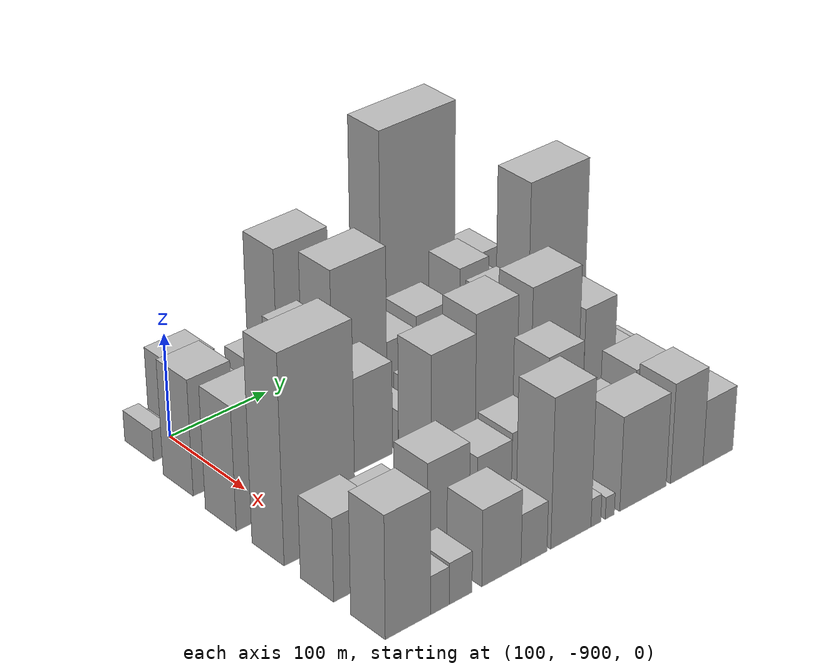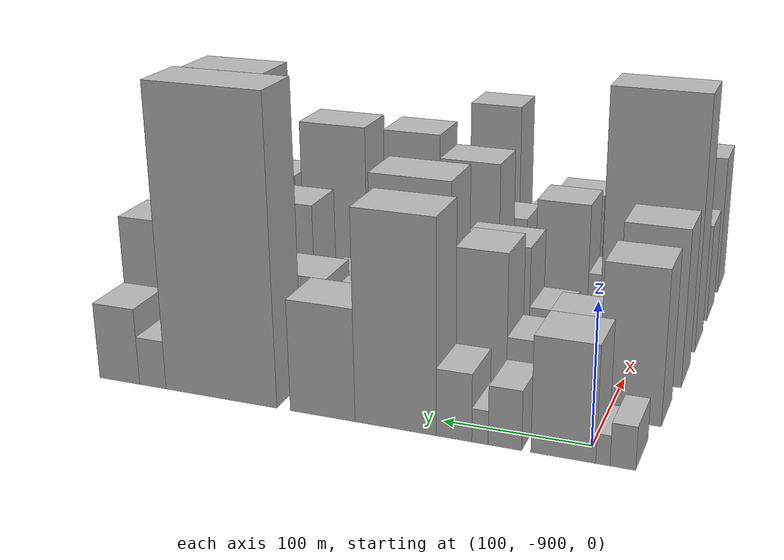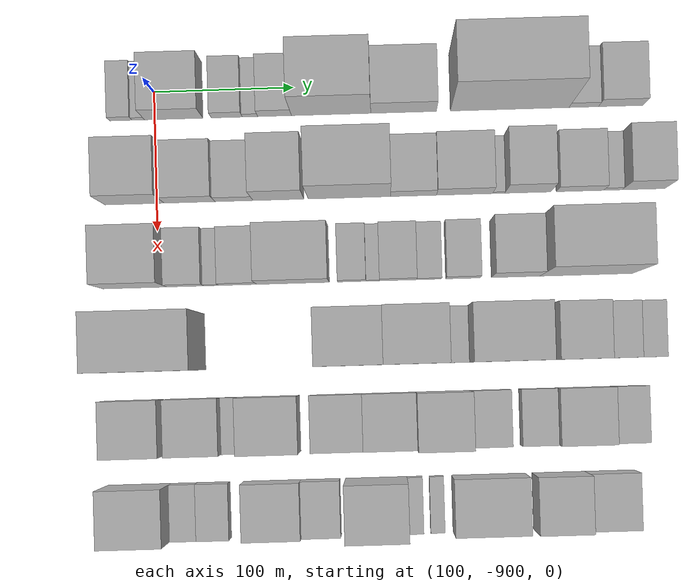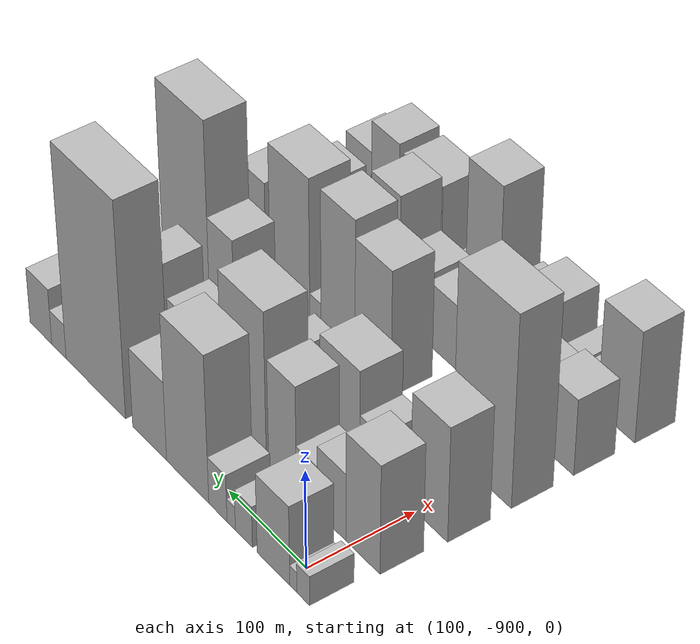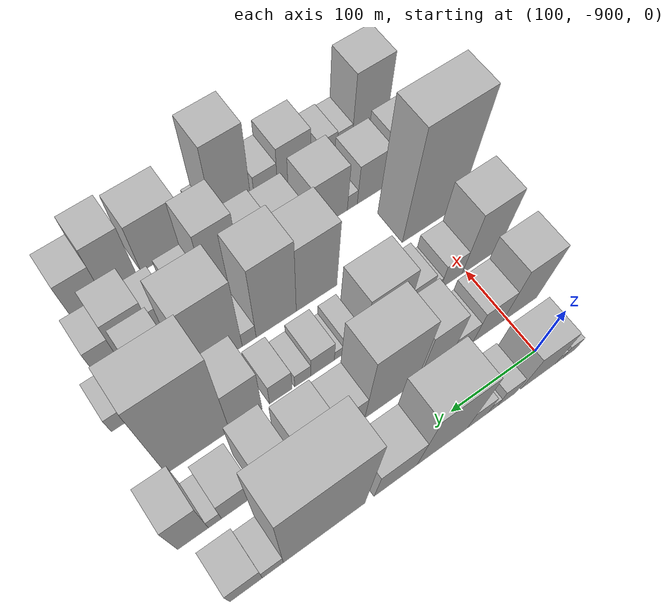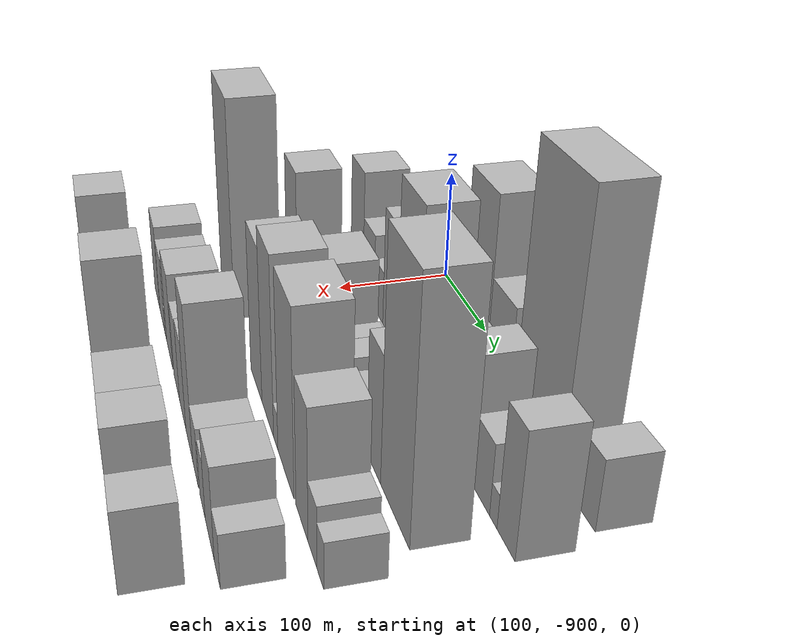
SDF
<sdf version="1.6">
 <world name="default">
  <model name="building_1">
   <static>1</static>
   <pose>100.0000 -923.9491 0 0.000000 0.000000 0.000000</pose>
   <link name="link">
    <pose>0 0 15.00 0 0 0</pose>
    <collision name="collision"><geometry><box><size>40.0000 16.1017 30.0000</size></box></geometry></collision>
    <visual name="visual">
     <cast_shadows>0</cast_shadows>
     <geometry><box><size>40.0000 16.1017 30.0000</size></box></geometry>
     <material>
      <script>
       <uri>model://HANNAS_wall/materials/scripts</uri>
       <uri>model://HANNAS_wall/materials/textures</uri>
       <name>vrc/HANNAS_wall</name>
      </script>
     </material>
    </visual>
   </link>
  </model>
  <model name="building_2">
   <static>1</static>
   <pose>100.0000 -911.4328 0 0.000000 0.000000 0.000000</pose>
   <link name="link">
    <pose>0 0 10.50 0 0 0</pose>
    <collision name="collision"><geometry><box><size>40.0000 8.9309 21.0000</size></box></geometry></collision>
    <visual name="visual">
     <cast_shadows>0</cast_shadows>
     <geometry><box><size>40.0000 8.9309 21.0000</size></box></geometry>
     <material>
      <script>
       <uri>model://HANNAS_wall/materials/scripts</uri>
       <uri>model://HANNAS_wall/materials/textures</uri>
       <name>vrc/HANNAS_wall</name>
      </script>
     </material>
    </visual>
   </link>
  </model>
  <model name="building_3">
   <static>1</static>
   <pose>100.0000 -886.1069 0 0.000000 0.000000 0.000000</pose>
   <link name="link">
    <pose>0 0 40.50 0 0 0</pose>
    <collision name="collision"><geometry><box><size>40.0000 41.7210 81.0000</size></box></geometry></collision>
    <visual name="visual">
     <cast_shadows>0</cast_shadows>
     <geometry><box><size>40.0000 41.7210 81.0000</size></box></geometry>
     <material>
      <script>
       <uri>model://HANNAS_wall/materials/scripts</uri>
       <uri>model://HANNAS_wall/materials/textures</uri>
       <name>vrc/HANNAS_wall</name>
      </script>
     </material>
    </visual>
   </link>
  </model>
  <model name="building_4">
   <static>1</static>
   <pose>100.0000 -848.1512 0 0.000000 0.000000 0.000000</pose>
   <link name="link">
    <pose>0 0 21.00 0 0 0</pose>
    <collision name="collision"><geometry><box><size>40.0000 22.1903 42.0000</size></box></geometry></collision>
    <visual name="visual">
     <cast_shadows>0</cast_shadows>
     <geometry><box><size>40.0000 22.1903 42.0000</size></box></geometry>
     <material>
      <script>
       <uri>model://HANNAS_wall/materials/scripts</uri>
       <uri>model://HANNAS_wall/materials/textures</uri>
       <name>vrc/HANNAS_wall</name>
      </script>
     </material>
    </visual>
   </link>
  </model>
  <model name="building_5">
   <static>1</static>
   <pose>100.0000 -831.5753 0 0.000000 0.000000 0.000000</pose>
   <link name="link">
    <pose>0 0 12.00 0 0 0</pose>
    <collision name="collision"><geometry><box><size>40.0000 10.9615 24.0000</size></box></geometry></collision>
    <visual name="visual">
     <cast_shadows>0</cast_shadows>
     <geometry><box><size>40.0000 10.9615 24.0000</size></box></geometry>
     <material>
      <script>
       <uri>model://HANNAS_wall/materials/scripts</uri>
       <uri>model://HANNAS_wall/materials/textures</uri>
       <name>vrc/HANNAS_wall</name>
      </script>
     </material>
    </visual>
   </link>
  </model>
  <model name="building_6">
   <static>1</static>
   <pose>100.0000 -814.0403 0 0.000000 0.000000 0.000000</pose>
   <link name="link">
    <pose>0 0 24.00 0 0 0</pose>
    <collision name="collision"><geometry><box><size>40.0000 24.1085 48.0000</size></box></geometry></collision>
    <visual name="visual">
     <cast_shadows>0</cast_shadows>
     <geometry><box><size>40.0000 24.1085 48.0000</size></box></geometry>
     <material>
      <script>
       <uri>model://HANNAS_wall/materials/scripts</uri>
       <uri>model://HANNAS_wall/materials/textures</uri>
       <name>vrc/HANNAS_wall</name>
      </script>
     </material>
    </visual>
   </link>
  </model>
  <model name="building_7">
   <static>1</static>
   <pose>100.0000 -773.6093 0 0.000000 0.000000 0.000000</pose>
   <link name="link">
    <pose>0 0 75.00 0 0 0</pose>
    <collision name="collision"><geometry><box><size>40.0000 56.7536 150.0000</size></box></geometry></collision>
    <visual name="visual">
     <cast_shadows>0</cast_shadows>
     <geometry><box><size>40.0000 56.7536 150.0000</size></box></geometry>
     <material>
      <script>
       <uri>model://HANNAS_wall/materials/scripts</uri>
       <uri>model://HANNAS_wall/materials/textures</uri>
       <name>vrc/HANNAS_wall</name>
      </script>
     </material>
    </visual>
   </link>
  </model>
  <model name="building_8">
   <static>1</static>
   <pose>100.0000 -721.7831 0 0.000000 0.000000 0.000000</pose>
   <link name="link">
    <pose>0 0 40.50 0 0 0</pose>
    <collision name="collision"><geometry><box><size>40.0000 46.8986 81.0000</size></box></geometry></collision>
    <visual name="visual">
     <cast_shadows>0</cast_shadows>
     <geometry><box><size>40.0000 46.8986 81.0000</size></box></geometry>
     <material>
      <script>
       <uri>model://HANNAS_wall/materials/scripts</uri>
       <uri>model://HANNAS_wall/materials/textures</uri>
       <name>vrc/HANNAS_wall</name>
      </script>
     </material>
    </visual>
   </link>
  </model>
  <model name="building_9">
   <static>1</static>
   <pose>100.0000 -645.8615 0 0.000000 0.000000 0.000000</pose>
   <link name="link">
    <pose>0 0 109.50 0 0 0</pose>
    <collision name="collision"><geometry><box><size>40.0000 84.9446 219.0000</size></box></geometry></collision>
    <visual name="visual">
     <cast_shadows>0</cast_shadows>
     <geometry><box><size>40.0000 84.9446 219.0000</size></box></geometry>
     <material>
      <script>
       <uri>model://HANNAS_wall/materials/scripts</uri>
       <uri>model://HANNAS_wall/materials/textures</uri>
       <name>vrc/HANNAS_wall</name>
      </script>
     </material>
    </visual>
   </link>
  </model>
  <model name="building_10">
   <static>1</static>
   <pose>100.0000 -592.8607 0 0.000000 0.000000 0.000000</pose>
   <link name="link">
    <pose>0 0 18.00 0 0 0</pose>
    <collision name="collision"><geometry><box><size>40.0000 21.0570 36.0000</size></box></geometry></collision>
    <visual name="visual">
     <cast_shadows>0</cast_shadows>
     <geometry><box><size>40.0000 21.0570 36.0000</size></box></geometry>
     <material>
      <script>
       <uri>model://HANNAS_wall/materials/scripts</uri>
       <uri>model://HANNAS_wall/materials/textures</uri>
       <name>vrc/HANNAS_wall</name>
      </script>
     </material>
    </visual>
   </link>
  </model>
  <model name="building_11">
   <static>1</static>
   <pose>100.0000 -566.2686 0 0.000000 0.000000 0.000000</pose>
   <link name="link">
    <pose>0 0 28.50 0 0 0</pose>
    <collision name="collision"><geometry><box><size>40.0000 32.1273 57.0000</size></box></geometry></collision>
    <visual name="visual">
     <cast_shadows>0</cast_shadows>
     <geometry><box><size>40.0000 32.1273 57.0000</size></box></geometry>
     <material>
      <script>
       <uri>model://HANNAS_wall/materials/scripts</uri>
       <uri>model://HANNAS_wall/materials/textures</uri>
       <name>vrc/HANNAS_wall</name>
      </script>
     </material>
    </visual>
   </link>
  </model>
  <model name="building_57">
   <static>1</static>
   <pose>160.0000 -915.7761 0 0.000000 0.000000 0.000000</pose>
   <link name="link">
    <pose>0 0 55.50 0 0 0</pose>
    <collision name="collision"><geometry><box><size>40.0000 42.4477 111.0000</size></box></geometry></collision>
    <visual name="visual">
     <cast_shadows>0</cast_shadows>
     <geometry><box><size>40.0000 42.4477 111.0000</size></box></geometry>
     <material>
      <script>
       <uri>model://HANNAS_wall/materials/scripts</uri>
       <uri>model://HANNAS_wall/materials/textures</uri>
       <name>vrc/HANNAS_wall</name>
      </script>
     </material>
    </visual>
   </link>
  </model>
  <model name="building_58">
   <static>1</static>
   <pose>160.0000 -876.4491 0 0.000000 0.000000 0.000000</pose>
   <link name="link">
    <pose>0 0 34.50 0 0 0</pose>
    <collision name="collision"><geometry><box><size>40.0000 36.2063 69.0000</size></box></geometry></collision>
    <visual name="visual">
     <cast_shadows>0</cast_shadows>
     <geometry><box><size>40.0000 36.2063 69.0000</size></box></geometry>
     <material>
      <script>
       <uri>model://HANNAS_wall/materials/scripts</uri>
       <uri>model://HANNAS_wall/materials/textures</uri>
       <name>vrc/HANNAS_wall</name>
      </script>
     </material>
    </visual>
   </link>
  </model>
  <model name="building_59">
   <static>1</static>
   <pose>160.0000 -844.7111 0 0.000000 0.000000 0.000000</pose>
   <link name="link">
    <pose>0 0 24.00 0 0 0</pose>
    <collision name="collision"><geometry><box><size>40.0000 27.2696 48.0000</size></box></geometry></collision>
    <visual name="visual">
     <cast_shadows>0</cast_shadows>
     <geometry><box><size>40.0000 27.2696 48.0000</size></box></geometry>
     <material>
      <script>
       <uri>model://HANNAS_wall/materials/scripts</uri>
       <uri>model://HANNAS_wall/materials/textures</uri>
       <name>vrc/HANNAS_wall</name>
      </script>
     </material>
    </visual>
   </link>
  </model>
  <model name="building_60">
   <static>1</static>
   <pose>160.0000 -812.8589 0 0.000000 0.000000 0.000000</pose>
   <link name="link">
    <pose>0 0 54.00 0 0 0</pose>
    <collision name="collision"><geometry><box><size>40.0000 36.4347 108.0000</size></box></geometry></collision>
    <visual name="visual">
     <cast_shadows>0</cast_shadows>
     <geometry><box><size>40.0000 36.4347 108.0000</size></box></geometry>
     <material>
      <script>
       <uri>model://HANNAS_wall/materials/scripts</uri>
       <uri>model://HANNAS_wall/materials/textures</uri>
       <name>vrc/HANNAS_wall</name>
      </script>
     </material>
    </visual>
   </link>
  </model>
  <model name="building_61">
   <static>1</static>
   <pose>160.0000 -762.2633 0 0.000000 0.000000 0.000000</pose>
   <link name="link">
    <pose>0 0 76.50 0 0 0</pose>
    <collision name="collision"><geometry><box><size>40.0000 58.7567 153.0000</size></box></geometry></collision>
    <visual name="visual">
     <cast_shadows>0</cast_shadows>
     <geometry><box><size>40.0000 58.7567 153.0000</size></box></geometry>
     <material>
      <script>
       <uri>model://HANNAS_wall/materials/scripts</uri>
       <uri>model://HANNAS_wall/materials/textures</uri>
       <name>vrc/HANNAS_wall</name>
      </script>
     </material>
    </visual>
   </link>
  </model>
  <model name="building_62">
   <static>1</static>
   <pose>160.0000 -716.4617 0 0.000000 0.000000 0.000000</pose>
   <link name="link">
    <pose>0 0 30.00 0 0 0</pose>
    <collision name="collision"><geometry><box><size>40.0000 32.8464 60.0000</size></box></geometry></collision>
    <visual name="visual">
     <cast_shadows>0</cast_shadows>
     <geometry><box><size>40.0000 32.8464 60.0000</size></box></geometry>
     <material>
      <script>
       <uri>model://HANNAS_wall/materials/scripts</uri>
       <uri>model://HANNAS_wall/materials/textures</uri>
       <name>vrc/HANNAS_wall</name>
      </script>
     </material>
    </visual>
   </link>
  </model>
  <model name="building_63">
   <static>1</static>
   <pose>160.0000 -679.9640 0 0.000000 0.000000 0.000000</pose>
   <link name="link">
    <pose>0 0 36.00 0 0 0</pose>
    <collision name="collision"><geometry><box><size>40.0000 40.1491 72.0000</size></box></geometry></collision>
    <visual name="visual">
     <cast_shadows>0</cast_shadows>
     <geometry><box><size>40.0000 40.1491 72.0000</size></box></geometry>
     <material>
      <script>
       <uri>model://HANNAS_wall/materials/scripts</uri>
       <uri>model://HANNAS_wall/materials/textures</uri>
       <name>vrc/HANNAS_wall</name>
      </script>
     </material>
    </visual>
   </link>
  </model>
  <model name="building_64">
   <static>1</static>
   <pose>160.0000 -655.5191 0 0.000000 0.000000 0.000000</pose>
   <link name="link">
    <pose>0 0 9.00 0 0 0</pose>
    <collision name="collision"><geometry><box><size>40.0000 8.7407 18.0000</size></box></geometry></collision>
    <visual name="visual">
     <cast_shadows>0</cast_shadows>
     <geometry><box><size>40.0000 8.7407 18.0000</size></box></geometry>
     <material>
      <script>
       <uri>model://HANNAS_wall/materials/scripts</uri>
       <uri>model://HANNAS_wall/materials/textures</uri>
       <name>vrc/HANNAS_wall</name>
      </script>
     </material>
    </visual>
   </link>
  </model>
  <model name="building_65">
   <static>1</static>
   <pose>160.0000 -634.7600 0 0.000000 0.000000 0.000000</pose>
   <link name="link">
    <pose>0 0 49.50 0 0 0</pose>
    <collision name="collision"><geometry><box><size>40.0000 32.7775 99.0000</size></box></geometry></collision>
    <visual name="visual">
     <cast_shadows>0</cast_shadows>
     <geometry><box><size>40.0000 32.7775 99.0000</size></box></geometry>
     <material>
      <script>
       <uri>model://HANNAS_wall/materials/scripts</uri>
       <uri>model://HANNAS_wall/materials/textures</uri>
       <name>vrc/HANNAS_wall</name>
      </script>
     </material>
    </visual>
   </link>
  </model>
  <model name="building_66">
   <static>1</static>
   <pose>160.0000 -597.4583 0 0.000000 0.000000 0.000000</pose>
   <link name="link">
    <pose>0 0 28.50 0 0 0</pose>
    <collision name="collision"><geometry><box><size>40.0000 33.8259 57.0000</size></box></geometry></collision>
    <visual name="visual">
     <cast_shadows>0</cast_shadows>
     <geometry><box><size>40.0000 33.8259 57.0000</size></box></geometry>
     <material>
      <script>
       <uri>model://HANNAS_wall/materials/scripts</uri>
       <uri>model://HANNAS_wall/materials/textures</uri>
       <name>vrc/HANNAS_wall</name>
      </script>
     </material>
    </visual>
   </link>
  </model>
  <model name="building_67">
   <static>1</static>
   <pose>160.0000 -573.9164 0 0.000000 0.000000 0.000000</pose>
   <link name="link">
    <pose>0 0 13.50 0 0 0</pose>
    <collision name="collision"><geometry><box><size>40.0000 13.2579 27.0000</size></box></geometry></collision>
    <visual name="visual">
     <cast_shadows>0</cast_shadows>
     <geometry><box><size>40.0000 13.2579 27.0000</size></box></geometry>
     <material>
      <script>
       <uri>model://HANNAS_wall/materials/scripts</uri>
       <uri>model://HANNAS_wall/materials/textures</uri>
       <name>vrc/HANNAS_wall</name>
      </script>
     </material>
    </visual>
   </link>
  </model>
  <model name="building_68">
   <static>1</static>
   <pose>160.0000 -551.9652 0 0.000000 0.000000 0.000000</pose>
   <link name="link">
    <pose>0 0 49.50 0 0 0</pose>
    <collision name="collision"><geometry><box><size>40.0000 30.6444 99.0000</size></box></geometry></collision>
    <visual name="visual">
     <cast_shadows>0</cast_shadows>
     <geometry><box><size>40.0000 30.6444 99.0000</size></box></geometry>
     <material>
      <script>
       <uri>model://HANNAS_wall/materials/scripts</uri>
       <uri>model://HANNAS_wall/materials/textures</uri>
       <name>vrc/HANNAS_wall</name>
      </script>
     </material>
    </visual>
   </link>
  </model>
  <model name="building_107">
   <static>1</static>
   <pose>220.0000 -917.1409 0 0.000000 0.000000 0.000000</pose>
   <link name="link">
    <pose>0 0 58.50 0 0 0</pose>
    <collision name="collision"><geometry><box><size>40.0000 45.7182 117.0000</size></box></geometry></collision>
    <visual name="visual">
     <cast_shadows>0</cast_shadows>
     <geometry><box><size>40.0000 45.7182 117.0000</size></box></geometry>
     <material>
      <script>
       <uri>model://HANNAS_wall/materials/scripts</uri>
       <uri>model://HANNAS_wall/materials/textures</uri>
       <name>vrc/HANNAS_wall</name>
      </script>
     </material>
    </visual>
   </link>
  </model>
  <model name="building_108">
   <static>1</static>
   <pose>220.0000 -881.0638 0 0.000000 0.000000 0.000000</pose>
   <link name="link">
    <pose>0 0 24.00 0 0 0</pose>
    <collision name="collision"><geometry><box><size>40.0000 26.4360 48.0000</size></box></geometry></collision>
    <visual name="visual">
     <cast_shadows>0</cast_shadows>
     <geometry><box><size>40.0000 26.4360 48.0000</size></box></geometry>
     <material>
      <script>
       <uri>model://HANNAS_wall/materials/scripts</uri>
       <uri>model://HANNAS_wall/materials/textures</uri>
       <name>vrc/HANNAS_wall</name>
      </script>
     </material>
    </visual>
   </link>
  </model>
  <model name="building_109">
   <static>1</static>
   <pose>220.0000 -862.3689 0 0.000000 0.000000 0.000000</pose>
   <link name="link">
    <pose>0 0 12.00 0 0 0</pose>
    <collision name="collision"><geometry><box><size>40.0000 10.9539 24.0000</size></box></geometry></collision>
    <visual name="visual">
     <cast_shadows>0</cast_shadows>
     <geometry><box><size>40.0000 10.9539 24.0000</size></box></geometry>
     <material>
      <script>
       <uri>model://HANNAS_wall/materials/scripts</uri>
       <uri>model://HANNAS_wall/materials/textures</uri>
       <name>vrc/HANNAS_wall</name>
      </script>
     </material>
    </visual>
   </link>
  </model>
  <model name="building_110">
   <static>1</static>
   <pose>220.0000 -843.4143 0 0.000000 0.000000 0.000000</pose>
   <link name="link">
    <pose>0 0 22.50 0 0 0</pose>
    <collision name="collision"><geometry><box><size>40.0000 26.9551 45.0000</size></box></geometry></collision>
    <visual name="visual">
     <cast_shadows>0</cast_shadows>
     <geometry><box><size>40.0000 26.9551 45.0000</size></box></geometry>
     <material>
      <script>
       <uri>model://HANNAS_wall/materials/scripts</uri>
       <uri>model://HANNAS_wall/materials/textures</uri>
       <name>vrc/HANNAS_wall</name>
      </script>
     </material>
    </visual>
   </link>
  </model>
  <model name="building_111">
   <static>1</static>
   <pose>220.0000 -804.0800 0 0.000000 0.000000 0.000000</pose>
   <link name="link">
    <pose>0 0 45.00 0 0 0</pose>
    <collision name="collision"><geometry><box><size>40.0000 51.7137 90.0000</size></box></geometry></collision>
    <visual name="visual">
     <cast_shadows>0</cast_shadows>
     <geometry><box><size>40.0000 51.7137 90.0000</size></box></geometry>
     <material>
      <script>
       <uri>model://HANNAS_wall/materials/scripts</uri>
       <uri>model://HANNAS_wall/materials/textures</uri>
       <name>vrc/HANNAS_wall</name>
      </script>
     </material>
    </visual>
   </link>
  </model>
  <model name="building_112">
   <static>1</static>
   <pose>220.0000 -762.1597 0 0.000000 0.000000 0.000000</pose>
   <link name="link">
    <pose>0 0 19.50 0 0 0</pose>
    <collision name="collision"><geometry><box><size>40.0000 20.1268 39.0000</size></box></geometry></collision>
    <visual name="visual">
     <cast_shadows>0</cast_shadows>
     <geometry><box><size>40.0000 20.1268 39.0000</size></box></geometry>
     <material>
      <script>
       <uri>model://HANNAS_wall/materials/scripts</uri>
       <uri>model://HANNAS_wall/materials/textures</uri>
       <name>vrc/HANNAS_wall</name>
      </script>
     </material>
    </visual>
   </link>
  </model>
  <model name="building_113">
   <static>1</static>
   <pose>220.0000 -747.3352 0 0.000000 0.000000 0.000000</pose>
   <link name="link">
    <pose>0 0 10.50 0 0 0</pose>
    <collision name="collision"><geometry><box><size>40.0000 9.5224 21.0000</size></box></geometry></collision>
    <visual name="visual">
     <cast_shadows>0</cast_shadows>
     <geometry><box><size>40.0000 9.5224 21.0000</size></box></geometry>
     <material>
      <script>
       <uri>model://HANNAS_wall/materials/scripts</uri>
       <uri>model://HANNAS_wall/materials/textures</uri>
       <name>vrc/HANNAS_wall</name>
      </script>
     </material>
    </visual>
   </link>
  </model>
  <model name="building_114">
   <static>1</static>
   <pose>220.0000 -729.2633 0 0.000000 0.000000 0.000000</pose>
   <link name="link">
    <pose>0 0 22.50 0 0 0</pose>
    <collision name="collision"><geometry><box><size>40.0000 26.6213 45.0000</size></box></geometry></collision>
    <visual name="visual">
     <cast_shadows>0</cast_shadows>
     <geometry><box><size>40.0000 26.6213 45.0000</size></box></geometry>
     <material>
      <script>
       <uri>model://HANNAS_wall/materials/scripts</uri>
       <uri>model://HANNAS_wall/materials/textures</uri>
       <name>vrc/HANNAS_wall</name>
      </script>
     </material>
    </visual>
   </link>
  </model>
  <model name="building_115">
   <static>1</static>
   <pose>220.0000 -707.0946 0 0.000000 0.000000 0.000000</pose>
   <link name="link">
    <pose>0 0 15.00 0 0 0</pose>
    <collision name="collision"><geometry><box><size>40.0000 17.7162 30.0000</size></box></geometry></collision>
    <visual name="visual">
     <cast_shadows>0</cast_shadows>
     <geometry><box><size>40.0000 17.7162 30.0000</size></box></geometry>
     <material>
      <script>
       <uri>model://HANNAS_wall/materials/scripts</uri>
       <uri>model://HANNAS_wall/materials/textures</uri>
       <name>vrc/HANNAS_wall</name>
      </script>
     </material>
    </visual>
   </link>
  </model>
  <model name="building_116">
   <static>1</static>
   <pose>220.0000 -682.9379 0 0.000000 0.000000 0.000000</pose>
   <link name="link">
    <pose>0 0 24.00 0 0 0</pose>
    <collision name="collision"><geometry><box><size>40.0000 24.5972 48.0000</size></box></geometry></collision>
    <visual name="visual">
     <cast_shadows>0</cast_shadows>
     <geometry><box><size>40.0000 24.5972 48.0000</size></box></geometry>
     <material>
      <script>
       <uri>model://HANNAS_wall/materials/scripts</uri>
       <uri>model://HANNAS_wall/materials/textures</uri>
       <name>vrc/HANNAS_wall</name>
      </script>
     </material>
    </visual>
   </link>
  </model>
  <model name="building_117">
   <static>1</static>
   <pose>220.0000 -645.2864 0 0.000000 0.000000 0.000000</pose>
   <link name="link">
    <pose>0 0 51.00 0 0 0</pose>
    <collision name="collision"><geometry><box><size>40.0000 34.7057 102.0000</size></box></geometry></collision>
    <visual name="visual">
     <cast_shadows>0</cast_shadows>
     <geometry><box><size>40.0000 34.7057 102.0000</size></box></geometry>
     <material>
      <script>
       <uri>model://HANNAS_wall/materials/scripts</uri>
       <uri>model://HANNAS_wall/materials/textures</uri>
       <name>vrc/HANNAS_wall</name>
      </script>
     </material>
    </visual>
   </link>
  </model>
  <model name="building_118">
   <static>1</static>
   <pose>220.0000 -594.8262 0 0.000000 0.000000 0.000000</pose>
   <link name="link">
    <pose>0 0 99.00 0 0 0</pose>
    <collision name="collision"><geometry><box><size>40.0000 66.2147 198.0000</size></box></geometry></collision>
    <visual name="visual">
     <cast_shadows>0</cast_shadows>
     <geometry><box><size>40.0000 66.2147 198.0000</size></box></geometry>
     <material>
      <script>
       <uri>model://HANNAS_wall/materials/scripts</uri>
       <uri>model://HANNAS_wall/materials/textures</uri>
       <name>vrc/HANNAS_wall</name>
      </script>
     </material>
    </visual>
   </link>
  </model>
  <model name="building_162">
   <static>1</static>
   <pose>280.0000 -904.1017 0 0.000000 0.000000 0.000000</pose>
   <link name="link">
    <pose>0 0 97.50 0 0 0</pose>
    <collision name="collision"><geometry><box><size>40.0000 71.7966 195.0000</size></box></geometry></collision>
    <visual name="visual">
     <cast_shadows>0</cast_shadows>
     <geometry><box><size>40.0000 71.7966 195.0000</size></box></geometry>
     <material>
      <script>
       <uri>model://HANNAS_wall/materials/scripts</uri>
       <uri>model://HANNAS_wall/materials/textures</uri>
       <name>vrc/HANNAS_wall</name>
      </script>
     </material>
    </visual>
   </link>
  </model>
  <model name="building_163">
   <static>1</static>
   <pose>280.0000 -765.3222 0 0.000000 0.000000 0.000000</pose>
   <link name="link">
    <pose>0 0 64.50 0 0 0</pose>
    <collision name="collision"><geometry><box><size>40.0000 47.2542 129.0000</size></box></geometry></collision>
    <visual name="visual">
     <cast_shadows>0</cast_shadows>
     <geometry><box><size>40.0000 47.2542 129.0000</size></box></geometry>
     <material>
      <script>
       <uri>model://HANNAS_wall/materials/scripts</uri>
       <uri>model://HANNAS_wall/materials/textures</uri>
       <name>vrc/HANNAS_wall</name>
      </script>
     </material>
    </visual>
   </link>
  </model>
  <model name="building_164">
   <static>1</static>
   <pose>280.0000 -718.9723 0 0.000000 0.000000 0.000000</pose>
   <link name="link">
    <pose>0 0 73.50 0 0 0</pose>
    <collision name="collision"><geometry><box><size>40.0000 45.4455 147.0000</size></box></geometry></collision>
    <visual name="visual">
     <cast_shadows>0</cast_shadows>
     <geometry><box><size>40.0000 45.4455 147.0000</size></box></geometry>
     <material>
      <script>
       <uri>model://HANNAS_wall/materials/scripts</uri>
       <uri>model://HANNAS_wall/materials/textures</uri>
       <name>vrc/HANNAS_wall</name>
      </script>
     </material>
    </visual>
   </link>
  </model>
  <model name="building_165">
   <static>1</static>
   <pose>280.0000 -688.5079 0 0.000000 0.000000 0.000000</pose>
   <link name="link">
    <pose>0 0 15.00 0 0 0</pose>
    <collision name="collision"><geometry><box><size>40.0000 15.4833 30.0000</size></box></geometry></collision>
    <visual name="visual">
     <cast_shadows>0</cast_shadows>
     <geometry><box><size>40.0000 15.4833 30.0000</size></box></geometry>
     <material>
      <script>
       <uri>model://HANNAS_wall/materials/scripts</uri>
       <uri>model://HANNAS_wall/materials/textures</uri>
       <name>vrc/HANNAS_wall</name>
      </script>
     </material>
    </visual>
   </link>
  </model>
  <model name="building_166">
   <static>1</static>
   <pose>280.0000 -653.5273 0 0.000000 0.000000 0.000000</pose>
   <link name="link">
    <pose>0 0 73.50 0 0 0</pose>
    <collision name="collision"><geometry><box><size>40.0000 54.4779 147.0000</size></box></geometry></collision>
    <visual name="visual">
     <cast_shadows>0</cast_shadows>
     <geometry><box><size>40.0000 54.4779 147.0000</size></box></geometry>
     <material>
      <script>
       <uri>model://HANNAS_wall/materials/scripts</uri>
       <uri>model://HANNAS_wall/materials/textures</uri>
       <name>vrc/HANNAS_wall</name>
      </script>
     </material>
    </visual>
   </link>
  </model>
  <model name="building_167">
   <static>1</static>
   <pose>280.0000 -602.2470 0 0.000000 0.000000 0.000000</pose>
   <link name="link">
    <pose>0 0 51.00 0 0 0</pose>
    <collision name="collision"><geometry><box><size>40.0000 36.0828 102.0000</size></box></geometry></collision>
    <visual name="visual">
     <cast_shadows>0</cast_shadows>
     <geometry><box><size>40.0000 36.0828 102.0000</size></box></geometry>
     <material>
      <script>
       <uri>model://HANNAS_wall/materials/scripts</uri>
       <uri>model://HANNAS_wall/materials/textures</uri>
       <name>vrc/HANNAS_wall</name>
      </script>
     </material>
    </visual>
   </link>
  </model>
  <model name="building_168">
   <static>1</static>
   <pose>280.0000 -571.8471 0 0.000000 0.000000 0.000000</pose>
   <link name="link">
    <pose>0 0 24.00 0 0 0</pose>
    <collision name="collision"><geometry><box><size>40.0000 24.7170 48.0000</size></box></geometry></collision>
    <visual name="visual">
     <cast_shadows>0</cast_shadows>
     <geometry><box><size>40.0000 24.7170 48.0000</size></box></geometry>
     <material>
      <script>
       <uri>model://HANNAS_wall/materials/scripts</uri>
       <uri>model://HANNAS_wall/materials/textures</uri>
       <name>vrc/HANNAS_wall</name>
      </script>
     </material>
    </visual>
   </link>
  </model>
  <model name="building_169">
   <static>1</static>
   <pose>280.0000 -550.3412 0 0.000000 0.000000 0.000000</pose>
   <link name="link">
    <pose>0 0 18.00 0 0 0</pose>
    <collision name="collision"><geometry><box><size>40.0000 18.2948 36.0000</size></box></geometry></collision>
    <visual name="visual">
     <cast_shadows>0</cast_shadows>
     <geometry><box><size>40.0000 18.2948 36.0000</size></box></geometry>
     <material>
      <script>
       <uri>model://HANNAS_wall/materials/scripts</uri>
       <uri>model://HANNAS_wall/materials/textures</uri>
       <name>vrc/HANNAS_wall</name>
      </script>
     </material>
    </visual>
   </link>
  </model>
  <model name="building_217">
   <static>1</static>
   <pose>340.0000 -919.4369 0 0.000000 0.000000 0.000000</pose>
   <link name="link">
    <pose>0 0 39.00 0 0 0</pose>
    <collision name="collision"><geometry><box><size>40.0000 41.1262 78.0000</size></box></geometry></collision>
    <visual name="visual">
     <cast_shadows>0</cast_shadows>
     <geometry><box><size>40.0000 41.1262 78.0000</size></box></geometry>
     <material>
      <script>
       <uri>model://HANNAS_wall/materials/scripts</uri>
       <uri>model://HANNAS_wall/materials/textures</uri>
       <name>vrc/HANNAS_wall</name>
      </script>
     </material>
    </visual>
   </link>
  </model>
  <model name="building_218">
   <static>1</static>
   <pose>340.0000 -876.7434 0 0.000000 0.000000 0.000000</pose>
   <link name="link">
    <pose>0 0 34.50 0 0 0</pose>
    <collision name="collision"><geometry><box><size>40.0000 38.2609 69.0000</size></box></geometry></collision>
    <visual name="visual">
     <cast_shadows>0</cast_shadows>
     <geometry><box><size>40.0000 38.2609 69.0000</size></box></geometry>
     <material>
      <script>
       <uri>model://HANNAS_wall/materials/scripts</uri>
       <uri>model://HANNAS_wall/materials/textures</uri>
       <name>vrc/HANNAS_wall</name>
      </script>
     </material>
    </visual>
   </link>
  </model>
  <model name="building_219">
   <static>1</static>
   <pose>340.0000 -851.4649 0 0.000000 0.000000 0.000000</pose>
   <link name="link">
    <pose>0 0 13.50 0 0 0</pose>
    <collision name="collision"><geometry><box><size>40.0000 12.2961 27.0000</size></box></geometry></collision>
    <visual name="visual">
     <cast_shadows>0</cast_shadows>
     <geometry><box><size>40.0000 12.2961 27.0000</size></box></geometry>
     <material>
      <script>
       <uri>model://HANNAS_wall/materials/scripts</uri>
       <uri>model://HANNAS_wall/materials/textures</uri>
       <name>vrc/HANNAS_wall</name>
      </script>
     </material>
    </visual>
   </link>
  </model>
  <model name="building_220">
   <static>1</static>
   <pose>340.0000 -823.6471 0 0.000000 0.000000 0.000000</pose>
   <link name="link">
    <pose>0 0 42.00 0 0 0</pose>
    <collision name="collision"><geometry><box><size>40.0000 43.3394 84.0000</size></box></geometry></collision>
    <visual name="visual">
     <cast_shadows>0</cast_shadows>
     <geometry><box><size>40.0000 43.3394 84.0000</size></box></geometry>
     <material>
      <script>
       <uri>model://HANNAS_wall/materials/scripts</uri>
       <uri>model://HANNAS_wall/materials/textures</uri>
       <name>vrc/HANNAS_wall</name>
      </script>
     </material>
    </visual>
   </link>
  </model>
  <model name="building_221">
   <static>1</static>
   <pose>340.0000 -775.6077 0 0.000000 0.000000 0.000000</pose>
   <link name="link">
    <pose>0 0 33.00 0 0 0</pose>
    <collision name="collision"><geometry><box><size>40.0000 36.7395 66.0000</size></box></geometry></collision>
    <visual name="visual">
     <cast_shadows>0</cast_shadows>
     <geometry><box><size>40.0000 36.7395 66.0000</size></box></geometry>
     <material>
      <script>
       <uri>model://HANNAS_wall/materials/scripts</uri>
       <uri>model://HANNAS_wall/materials/textures</uri>
       <name>vrc/HANNAS_wall</name>
      </script>
     </material>
    </visual>
   </link>
  </model>
  <model name="building_222">
   <static>1</static>
   <pose>340.0000 -738.3182 0 0.000000 0.000000 0.000000</pose>
   <link name="link">
    <pose>0 0 36.00 0 0 0</pose>
    <collision name="collision"><geometry><box><size>40.0000 37.8397 72.0000</size></box></geometry></collision>
    <visual name="visual">
     <cast_shadows>0</cast_shadows>
     <geometry><box><size>40.0000 37.8397 72.0000</size></box></geometry>
     <material>
      <script>
       <uri>model://HANNAS_wall/materials/scripts</uri>
       <uri>model://HANNAS_wall/materials/textures</uri>
       <name>vrc/HANNAS_wall</name>
      </script>
     </material>
    </visual>
   </link>
  </model>
  <model name="building_223">
   <static>1</static>
   <pose>340.0000 -700.2381 0 0.000000 0.000000 0.000000</pose>
   <link name="link">
    <pose>0 0 63.00 0 0 0</pose>
    <collision name="collision"><geometry><box><size>40.0000 38.3205 126.0000</size></box></geometry></collision>
    <visual name="visual">
     <cast_shadows>0</cast_shadows>
     <geometry><box><size>40.0000 38.3205 126.0000</size></box></geometry>
     <material>
      <script>
       <uri>model://HANNAS_wall/materials/scripts</uri>
       <uri>model://HANNAS_wall/materials/textures</uri>
       <name>vrc/HANNAS_wall</name>
      </script>
     </material>
    </visual>
   </link>
  </model>
  <model name="building_224">
   <static>1</static>
   <pose>340.0000 -666.7910 0 0.000000 0.000000 0.000000</pose>
   <link name="link">
    <pose>0 0 24.00 0 0 0</pose>
    <collision name="collision"><geometry><box><size>40.0000 28.5738 48.0000</size></box></geometry></collision>
    <visual name="visual">
     <cast_shadows>0</cast_shadows>
     <geometry><box><size>40.0000 28.5738 48.0000</size></box></geometry>
     <material>
      <script>
       <uri>model://HANNAS_wall/materials/scripts</uri>
       <uri>model://HANNAS_wall/materials/textures</uri>
       <name>vrc/HANNAS_wall</name>
      </script>
     </material>
    </visual>
   </link>
  </model>
  <model name="building_225">
   <static>1</static>
   <pose>340.0000 -632.6880 0 0.000000 0.000000 0.000000</pose>
   <link name="link">
    <pose>0 0 22.50 0 0 0</pose>
    <collision name="collision"><geometry><box><size>40.0000 25.6322 45.0000</size></box></geometry></collision>
    <visual name="visual">
     <cast_shadows>0</cast_shadows>
     <geometry><box><size>40.0000 25.6322 45.0000</size></box></geometry>
     <material>
      <script>
       <uri>model://HANNAS_wall/materials/scripts</uri>
       <uri>model://HANNAS_wall/materials/textures</uri>
       <name>vrc/HANNAS_wall</name>
      </script>
     </material>
    </visual>
   </link>
  </model>
  <model name="building_226">
   <static>1</static>
   <pose>340.0000 -600.1332 0 0.000000 0.000000 0.000000</pose>
   <link name="link">
    <pose>0 0 36.00 0 0 0</pose>
    <collision name="collision"><geometry><box><size>40.0000 39.4774 72.0000</size></box></geometry></collision>
    <visual name="visual">
     <cast_shadows>0</cast_shadows>
     <geometry><box><size>40.0000 39.4774 72.0000</size></box></geometry>
     <material>
      <script>
       <uri>model://HANNAS_wall/materials/scripts</uri>
       <uri>model://HANNAS_wall/materials/textures</uri>
       <name>vrc/HANNAS_wall</name>
      </script>
     </material>
    </visual>
   </link>
  </model>
  <model name="building_227">
   <static>1</static>
   <pose>340.0000 -567.9338 0 0.000000 0.000000 0.000000</pose>
   <link name="link">
    <pose>0 0 21.00 0 0 0</pose>
    <collision name="collision"><geometry><box><size>40.0000 24.9214 42.0000</size></box></geometry></collision>
    <visual name="visual">
     <cast_shadows>0</cast_shadows>
     <geometry><box><size>40.0000 24.9214 42.0000</size></box></geometry>
     <material>
      <script>
       <uri>model://HANNAS_wall/materials/scripts</uri>
       <uri>model://HANNAS_wall/materials/textures</uri>
       <name>vrc/HANNAS_wall</name>
      </script>
     </material>
    </visual>
   </link>
  </model>
  <model name="building_271">
   <static>1</static>
   <pose>400.0000 -917.4859 0 0.000000 0.000000 0.000000</pose>
   <link name="link">
    <pose>0 0 57.00 0 0 0</pose>
    <collision name="collision"><geometry><box><size>40.0000 45.0281 114.0000</size></box></geometry></collision>
    <visual name="visual">
     <cast_shadows>0</cast_shadows>
     <geometry><box><size>40.0000 45.0281 114.0000</size></box></geometry>
     <material>
      <script>
       <uri>model://HANNAS_wall/materials/scripts</uri>
       <uri>model://HANNAS_wall/materials/textures</uri>
       <name>vrc/HANNAS_wall</name>
      </script>
     </material>
    </visual>
   </link>
  </model>
  <model name="building_272">
   <static>1</static>
   <pose>400.0000 -885.6295 0 0.000000 0.000000 0.000000</pose>
   <link name="link">
    <pose>0 0 18.00 0 0 0</pose>
    <collision name="collision"><geometry><box><size>40.0000 18.6848 36.0000</size></box></geometry></collision>
    <visual name="visual">
     <cast_shadows>0</cast_shadows>
     <geometry><box><size>40.0000 18.6848 36.0000</size></box></geometry>
     <material>
      <script>
       <uri>model://HANNAS_wall/materials/scripts</uri>
       <uri>model://HANNAS_wall/materials/textures</uri>
       <name>vrc/HANNAS_wall</name>
      </script>
     </material>
    </visual>
   </link>
  </model>
  <model name="building_273">
   <static>1</static>
   <pose>400.0000 -864.7267 0 0.000000 0.000000 0.000000</pose>
   <link name="link">
    <pose>0 0 19.50 0 0 0</pose>
    <collision name="collision"><geometry><box><size>40.0000 23.1207 39.0000</size></box></geometry></collision>
    <visual name="visual">
     <cast_shadows>0</cast_shadows>
     <geometry><box><size>40.0000 23.1207 39.0000</size></box></geometry>
     <material>
      <script>
       <uri>model://HANNAS_wall/materials/scripts</uri>
       <uri>model://HANNAS_wall/materials/textures</uri>
       <name>vrc/HANNAS_wall</name>
      </script>
     </material>
    </visual>
   </link>
  </model>
  <model name="building_274">
   <static>1</static>
   <pose>400.0000 -822.7405 0 0.000000 0.000000 0.000000</pose>
   <link name="link">
    <pose>0 0 36.00 0 0 0</pose>
    <collision name="collision"><geometry><box><size>40.0000 40.8517 72.0000</size></box></geometry></collision>
    <visual name="visual">
     <cast_shadows>0</cast_shadows>
     <geometry><box><size>40.0000 40.8517 72.0000</size></box></geometry>
     <material>
      <script>
       <uri>model://HANNAS_wall/materials/scripts</uri>
       <uri>model://HANNAS_wall/materials/textures</uri>
       <name>vrc/HANNAS_wall</name>
      </script>
     </material>
    </visual>
   </link>
  </model>
  <model name="building_275">
   <static>1</static>
   <pose>400.0000 -788.5054 0 0.000000 0.000000 0.000000</pose>
   <link name="link">
    <pose>0 0 24.00 0 0 0</pose>
    <collision name="collision"><geometry><box><size>40.0000 27.6184 48.0000</size></box></geometry></collision>
    <visual name="visual">
     <cast_shadows>0</cast_shadows>
     <geometry><box><size>40.0000 27.6184 48.0000</size></box></geometry>
     <material>
      <script>
       <uri>model://HANNAS_wall/materials/scripts</uri>
       <uri>model://HANNAS_wall/materials/textures</uri>
       <name>vrc/HANNAS_wall</name>
      </script>
     </material>
    </visual>
   </link>
  </model>
  <model name="building_276">
   <static>1</static>
   <pose>400.0000 -748.9218 0 0.000000 0.000000 0.000000</pose>
   <link name="link">
    <pose>0 0 70.50 0 0 0</pose>
    <collision name="collision"><geometry><box><size>40.0000 43.5488 141.0000</size></box></geometry></collision>
    <visual name="visual">
     <cast_shadows>0</cast_shadows>
     <geometry><box><size>40.0000 43.5488 141.0000</size></box></geometry>
     <material>
      <script>
       <uri>model://HANNAS_wall/materials/scripts</uri>
       <uri>model://HANNAS_wall/materials/textures</uri>
       <name>vrc/HANNAS_wall</name>
      </script>
     </material>
    </visual>
   </link>
  </model>
  <model name="building_277">
   <static>1</static>
   <pose>400.0000 -721.7369 0 0.000000 0.000000 0.000000</pose>
   <link name="link">
    <pose>0 0 13.50 0 0 0</pose>
    <collision name="collision"><geometry><box><size>40.0000 10.8210 27.0000</size></box></geometry></collision>
    <visual name="visual">
     <cast_shadows>0</cast_shadows>
     <geometry><box><size>40.0000 10.8210 27.0000</size></box></geometry>
     <material>
      <script>
       <uri>model://HANNAS_wall/materials/scripts</uri>
       <uri>model://HANNAS_wall/materials/textures</uri>
       <name>vrc/HANNAS_wall</name>
      </script>
     </material>
    </visual>
   </link>
  </model>
  <model name="building_278">
   <static>1</static>
   <pose>400.0000 -706.3017 0 0.000000 0.000000 0.000000</pose>
   <link name="link">
    <pose>0 0 10.50 0 0 0</pose>
    <collision name="collision"><geometry><box><size>40.0000 10.0496 21.0000</size></box></geometry></collision>
    <visual name="visual">
     <cast_shadows>0</cast_shadows>
     <geometry><box><size>40.0000 10.0496 21.0000</size></box></geometry>
     <material>
      <script>
       <uri>model://HANNAS_wall/materials/scripts</uri>
       <uri>model://HANNAS_wall/materials/textures</uri>
       <name>vrc/HANNAS_wall</name>
      </script>
     </material>
    </visual>
   </link>
  </model>
  <model name="building_279">
   <static>1</static>
   <pose>400.0000 -669.0590 0 0.000000 0.000000 0.000000</pose>
   <link name="link">
    <pose>0 0 45.00 0 0 0</pose>
    <collision name="collision"><geometry><box><size>40.0000 52.4358 90.0000</size></box></geometry></collision>
    <visual name="visual">
     <cast_shadows>0</cast_shadows>
     <geometry><box><size>40.0000 52.4358 90.0000</size></box></geometry>
     <material>
      <script>
       <uri>model://HANNAS_wall/materials/scripts</uri>
       <uri>model://HANNAS_wall/materials/textures</uri>
       <name>vrc/HANNAS_wall</name>
      </script>
     </material>
    </visual>
   </link>
  </model>
  <model name="building_280">
   <static>1</static>
   <pose>400.0000 -619.0280 0 0.000000 0.000000 0.000000</pose>
   <link name="link">
    <pose>0 0 48.00 0 0 0</pose>
    <collision name="collision"><geometry><box><size>40.0000 37.6260 96.0000</size></box></geometry></collision>
    <visual name="visual">
     <cast_shadows>0</cast_shadows>
     <geometry><box><size>40.0000 37.6260 96.0000</size></box></geometry>
     <material>
      <script>
       <uri>model://HANNAS_wall/materials/scripts</uri>
       <uri>model://HANNAS_wall/materials/textures</uri>
       <name>vrc/HANNAS_wall</name>
      </script>
     </material>
    </visual>
   </link>
  </model>
  <model name="building_281">
   <static>1</static>
   <pose>400.0000 -582.5478 0 0.000000 0.000000 0.000000</pose>
   <link name="link">
    <pose>0 0 31.50 0 0 0</pose>
    <collision name="collision"><geometry><box><size>40.0000 35.3344 63.0000</size></box></geometry></collision>
    <visual name="visual">
     <cast_shadows>0</cast_shadows>
     <geometry><box><size>40.0000 35.3344 63.0000</size></box></geometry>
     <material>
      <script>
       <uri>model://HANNAS_wall/materials/scripts</uri>
       <uri>model://HANNAS_wall/materials/textures</uri>
       <name>vrc/HANNAS_wall</name>
      </script>
     </material>
    </visual>
   </link>
  </model>
 </world>
</sdf>
